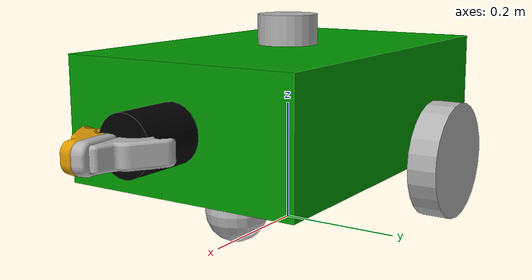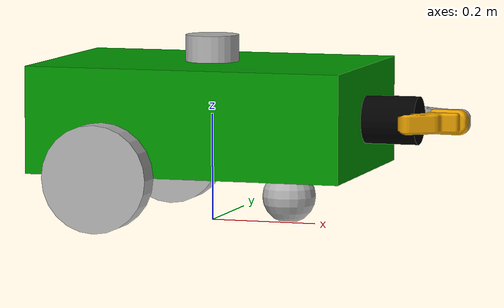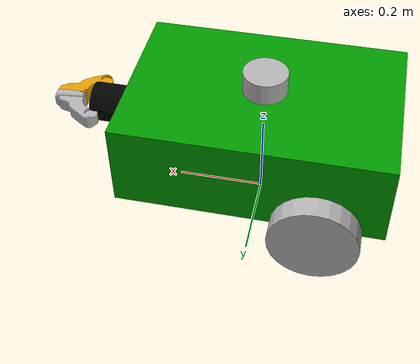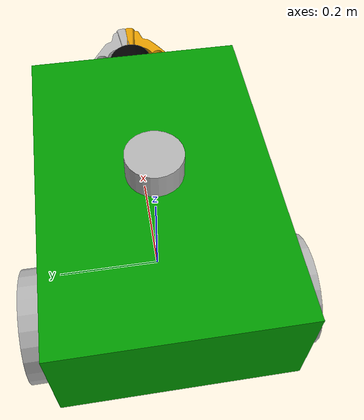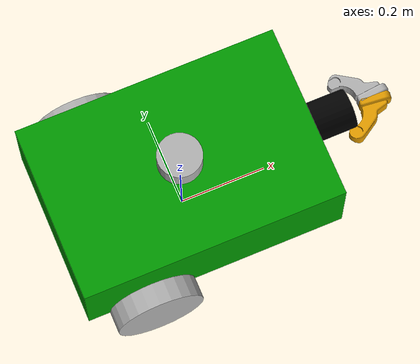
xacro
<?xml version="1.0"?>
<robot name="my_robot" xmlns:xacro="http://ros.org/wiki/xacro">

<!--part.xacro-->
<xacro:include filename="/home/selawe/my_robot_ws/src/robot_description/urdf/part.xacro"/>

  <!-- Base -->
  <link name="base_footprint"/>

  <link name="base_link">

    <visual>
      <geometry>
        <box size="${length_box} ${width_box} ${hight_box}"/>
      </geometry>
      <origin xyz="0 0 0.1" rpy="0 0 0"/>
      <material name="green"/>
    </visual>

    <collision>
      <geometry>
        <box size="${length_box} ${width_box} ${hight_box}"/>
      </geometry>
      <origin xyz="0 0 0.1" rpy="0 0 0"/>
    </collision>

    <inertial>
      <mass value="${mass}"/>
      <inertia ixx="${(mass/12.0) * (hight_box*hight_box + length_box*length_box)}" ixy="0.0" ixz="0.0"
               iyy="${(mass/12.0) * (width_box*width_box + length_box*length_box)}" iyz="0.0"
               izz="${(mass/12.0) * (width_box*width_box + hight_box*hight_box)}" />
    </inertial>

  </link>

  <!--Links (Components)-->

  <!--CYLINDER-->
  <xacro:cylinder_link name="lidar" radius="${lidar_radius}" length="${lidar_length}" mass="${mass}" color="gray" xyz="0 0 0" rpy="0 0 0"/>
  <xacro:cylinder_link name="right_wheel" radius="${wheel_radius}" length="${wheel_length}" mass="${mass}" color="gray" xyz="0 0 0" rpy="1.57 0 0"/>
  <xacro:cylinder_link name="left_wheel" radius="${wheel_radius}" length="${wheel_length}" mass="${mass}" color="gray" xyz="0 0 0" rpy="1.57 0 0"/>
  <xacro:cylinder_link name="arm" radius="${arm_radius}" length="${arm_length}" mass="${mass}" color="black" xyz="0 0 0" rpy="0 1.57 0"/>

  <!--CASTER-->
  <link name="caster_wheel">

    <visual>
      <geometry>
        <sphere radius="${caster_radius}"/>
      </geometry>
      <origin xyz="0 0 0" rpy="0 0 0"/>
      <material name="gray"/>
    </visual>

    <collision>
      <geometry>
        <sphere radius="${caster_radius}"/>
      </geometry>
    </collision>

    <inertial>
      <mass value="${mass}"/>
      <inertia ixx="${(2/5) * mass * caster_radius * caster_radius}" ixy="0.0" ixz="0.0"
                     iyy="${(2/5) * mass * caster_radius * caster_radius}" iyz="0.0"
                     izz="${(2/5) * mass * caster_radius * caster_radius}" />
    </inertial>

  </link>

  <!--GRIPPER-->
  <xacro:mesh_link name="right_gripper" mesh_path="package://urdf_tutorial/meshes/l_finger_tip.dae" scale="${gripper_scale}" xyz="0 0 0" rpy="0 0 0.1"/>
  <xacro:mesh_link name="left_gripper"  mesh_path="package://urdf_tutorial/meshes/l_finger_tip.dae" scale="${gripper_scale}" xyz="0 0 0" rpy="3.1415 0 -0.1"/>

  <!-- Joints -->
  <joint name="footprint_to_base" type="fixed">
    <parent link="base_footprint"/>
    <child link="base_link"/>
    <origin xyz="0 0 0.1" rpy="0 0 0"/>
  </joint>

  <joint name="base_to_lidar" type="fixed">
    <parent link="base_link"/>
    <child link="lidar"/>
    <origin xyz="0 0 0.225" rpy="0 0 0"/>
  </joint>

  <joint name="base_to_left_wheel" type="continuous">
    <parent link="base_link"/>
    <child link="left_wheel"/>
    <origin xyz="-0.15 0.225 0" rpy="0 0 0"/>
    <axis xyz="0 1 0"/>
  </joint>

  <joint name="base_to_right_wheel" type="continuous">
    <parent link="base_link"/>
    <child link="right_wheel"/>
    <origin xyz="-0.15 -0.225 0" rpy="0 0 0"/>
    <axis xyz="0 1 0"/>
  </joint>

  <joint name="base_to_caster" type="fixed">
    <parent link="base_link"/>
    <child link="caster_wheel"/>
    <origin xyz="0.15 0 -0.05" rpy="0 0 0"/>
  </joint>

  <joint name="base_to_arm" type="fixed">
    <parent link="base_link"/>
    <child link="arm"/>
    <origin xyz="0.35 0 0.1" rpy="0 0 0"/>
  </joint>

  <joint name="right_gripper_joint" type="revolute">
    <parent link="base_link"/>
    <child link="right_gripper"/>
    <origin xyz="0.43 0.025 0.1" rpy="0 0 0"/>
    <axis xyz="0 0 1"/>
    <limit effort="1000.0" lower="0.0" upper="0.548" velocity="0.5"/>
  </joint>

  <joint name="left_gripper_joint" type="revolute">
    <parent link="base_link"/>
    <child link="left_gripper"/>
    <origin xyz="0.43 -0.025 0.1" rpy="0 0 0"/>
    <axis xyz="0 0 1"/>
    <limit effort="1000.0" lower="-0.548" upper="0.0" velocity="0.5"/>
  </joint>

  <!--caster wheel-->
  <gazebo reference="caster_wheel">
    <mu1 value="0.1"/>
    <mu2 value="0.1"/>
  </gazebo>

  <!--diff wheel-->
  <gazebo>
    <plugin name="diff_drive_controller" filename="libgazebo_ros_diff_drive.so">
      <ros>
        <namespace>/</namespace>
        <remapping>cmd_vel:=cmd_vel</remapping> <!-- ROS 2 topic -->
      </ros>
      <left_joint>base_to_left_wheel</left_joint>
      <right_joint>base_to_right_wheel</right_joint>
      <wheel_separation>0.45</wheel_separation>
      <wheel_radius>0.1</wheel_radius>
      <publish_odom>true</publish_odom>
      <odom_topic>odom</odom_topic>
      <robot_base_frame>base_footprint</robot_base_frame>
    </plugin>
  </gazebo>

  <!--joint_state_pub-->
  <gazebo>
    <plugin name="joint_state_publisher" filename="libgazebo_ros_joint_state_publisher.so">
      <ros>
        <namespace>/</namespace>
      </ros>
      <publish_rate>50</publish_rate>
    </plugin>
  </gazebo>

</robot>

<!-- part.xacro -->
<robot xmlns:xacro="http://www.ros.org/wiki/xacro">

  <!-- Parameters -->
  <xacro:property name="wheel_radius" value="0.1"/>
  <xacro:property name="wheel_length" value="0.05"/>
  <xacro:property name="lidar_radius" value="0.05"/>
  <xacro:property name="lidar_length" value="0.05"/>
  <xacro:property name="caster_radius" value="0.05"/>
  <xacro:property name="arm_radius" value="0.045"/>
  <xacro:property name="arm_length" value="0.1"/>
  <xacro:property name="gripper_scale" value="2 2 2"/>
  <xacro:property name="mass" value="1.0"/>
  <xacro:property name="length_box" value="0.6"/>
  <xacro:property name="width_box" value="0.4"/>
  <xacro:property name="hight_box" value="0.2"/>

  <!-- Colors -->
  <material name="gray"><color rgba="0.7 0.7 0.7 1"/></material>
  <material name="green"><color rgba="0 0.6 0 1"/></material>
  <material name="white"><color rgba="1 1 1 1"/></material>
  <material name="black"><color rgba="0 0 0 1"/></material>

  <!-- Macros -->

  <!-- Cylinder Link -->
  <xacro:macro name="cylinder_link" params="name radius length mass color xyz rpy">
    <link name="${name}">

      <visual>
        <geometry>
          <cylinder radius="${radius}" length="${length}"/>
        </geometry>
        <origin xyz="${xyz}" rpy="${rpy}"/>
        <material name="${color}"/>
      </visual>

      <collision>
        <geometry>
          <cylinder radius="${radius}" length="${length}"/>
        </geometry>
        <origin xyz="${xyz}" rpy="${rpy}"/>
      </collision>

      <inertial>
        <mass value="${mass}"/>
        <inertia ixx="${(mass/12.0) * (3.0*radius*radius + length*length)}" ixy="0.0" ixz="0.0"
                 iyy="${(mass/12.0) * (3.0*radius*radius + length*length)}" iyz="0.0"
                 izz="${(mass/2.0)*(radius*radius)}"/>
      </inertial>

    </link>
  </xacro:macro>

  <!-- Mesh Link -->
  <xacro:macro name="mesh_link" params="name mesh_path scale xyz rpy">
    <link name="${name}">

      <visual>
        <geometry>
          <mesh filename="${mesh_path}" scale="${scale}"/>
        </geometry>
        <origin xyz="${xyz}" rpy="${rpy}"/>
      </visual>

    </link>
  </xacro:macro>

</robot>
